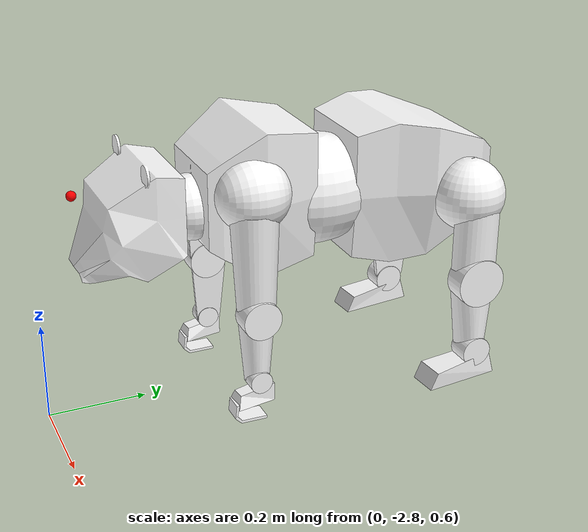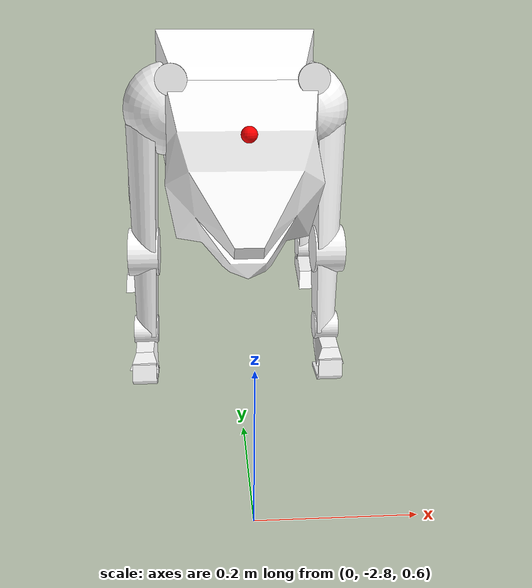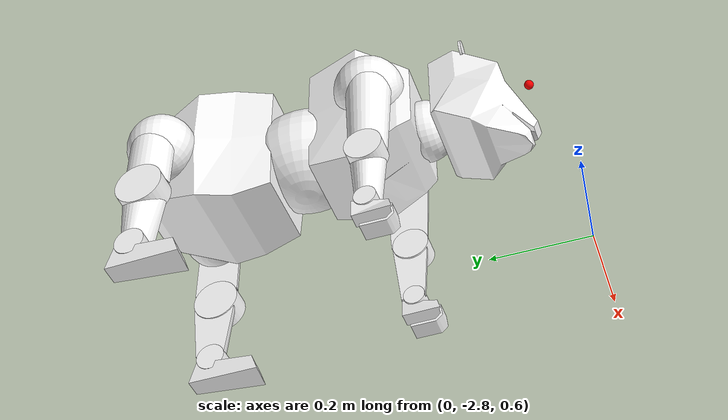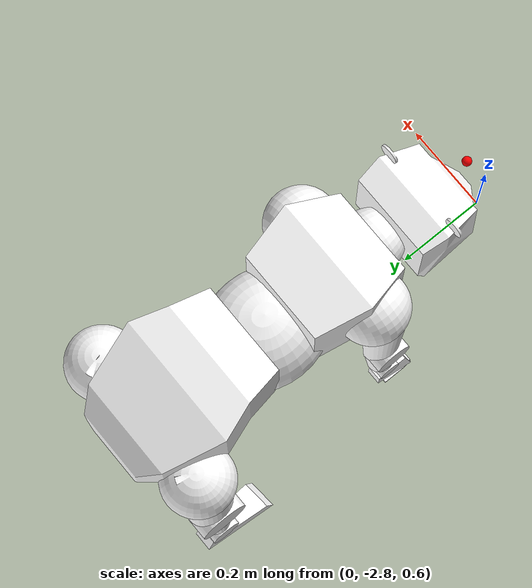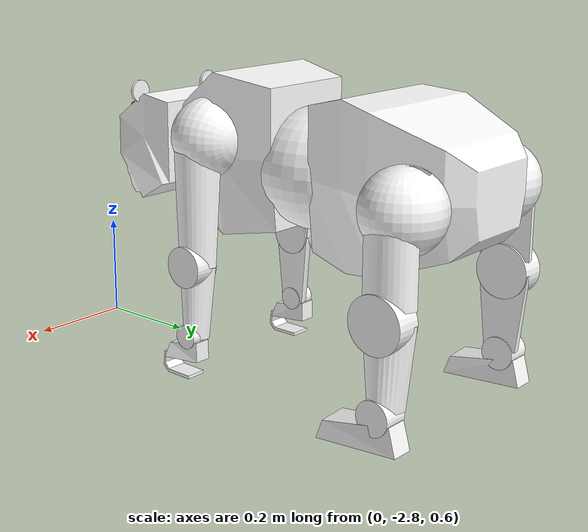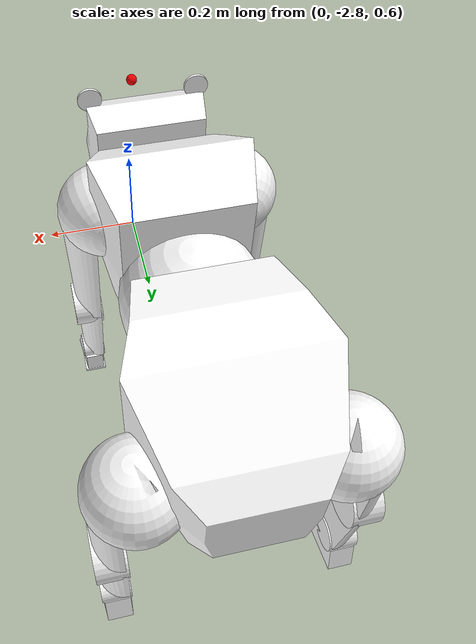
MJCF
<mujoco>
  <compiler angle="radian" autolimits="true"/>
  <worldbody>
    <!-- Parent World [[1.0,0.0,0.0,0.0],[0.0,1.0,0.0,0.0],[0.0,0.0,1.0,0.0],[0.0,0.0,0.0,1.0]]-->
    <!-- Parent local [[1.0,0.0,0.0,0.0],[0.0,1.0,0.0,0.0],[0.0,0.0,1.0,0.0],[0.0,0.0,0.0,1.0]]-->
    <!-- Parent Inverse [[1.0,0.0,0.0,0.0],[0.0,1.0,0.0,0.0],[0.0,0.0,1.0,0.0],[0.0,0.0,0.0,1.0]]-->
    <!-- Child World [[1.0,0.0,0.0,-0.0],[0.0,1.0,0.0,-0.0],[0.0,0.0,1.0,0.4],[0.0,0.0,0.0,1.0]]-->
    <!-- Child Local [[1.0,0.0,0.0,-0.0],[0.0,1.0,0.0,-0.0],[0.0,0.0,1.0,0.4],[0.0,0.0,0.0,1.0]]-->
    <!-- Child Basis [[1.0,0.0,0.0,-0.0],[0.0,1.0,0.0,-0.0],[0.0,0.0,1.0,0.4],[0.0,0.0,0.0,1.0]]-->
    <!-- Relative Matrix [[1.0,0.0,0.0,0.0],[0.0,1.0,0.0,-2.0],[0.0,0.0,1.0,1.0],[0.0,0.0,0.0,1.0]]-->
    <body name="TaiwanBear" pos="0.0 -2.0 1.0" >
    <freejoint/>
      <geom type="mesh" name="TaiwanBear geom" mesh="Body" rgba="1.0 1.0 1.0 1.0"  />
      <!-- Parent World [[1.0,0.0,0.0,-0.0],[0.0,1.0,0.0,-0.0],[0.0,0.0,1.0,0.4],[0.0,0.0,0.0,1.0]]-->
      <!-- Parent local [[1.0,0.0,0.0,-0.0],[0.0,1.0,0.0,-0.0],[0.0,0.0,1.0,0.4],[0.0,0.0,0.0,1.0]]-->
      <!-- Parent Inverse [[1.0,0.0,0.0,0.0],[0.0,1.0,0.0,0.0],[0.0,0.0,1.0,0.0],[0.0,0.0,0.0,1.0]]-->
      <!-- Child World [[-0.0,0.0,1.0,0.14],[0.0,1.0,0.0,0.06],[-1.0,0.0,-0.0,-0.01],[0.0,0.0,0.0,1.0]]-->
      <!-- Child Local [[-0.0,0.0,1.0,0.14],[0.0,1.0,0.0,0.06],[-1.0,0.0,-0.0,-0.41],[0.0,0.0,0.0,1.0]]-->
      <!-- Child Basis [[-0.0,0.0,1.0,0.14],[0.0,1.0,0.0,0.06],[-1.0,0.0,-0.0,-0.01],[0.0,0.0,0.0,1.0]]-->
      <!-- Relative Matrix [[-0.0,0.0,1.0,0.14],[0.0,1.0,0.0,0.06],[-1.0,0.0,-0.0,-0.01],[0.0,0.0,0.0,1.0]]-->
      <body name="RJoint_Back_Upper_XYZ_L" pos="0.14427818357944489 0.058760032057762146 -0.007478982210159302" quat="0.7071067094802856 0.0 0.7071068286895752 0.0" >
      <joint type="hinge" name="RJoint_Back_Upper_XYZ_L_X" pos="0.0 0.0 0.0" axis = "1 0 0" damping="1.084" armature="0.045" frictionloss="0.03"  />
      <joint type="hinge" name="RJoint_Back_Upper_XYZ_L_Y" pos="0.0 0.0 0.0" axis = "0 1 0" damping="1.084" armature="0.045" frictionloss="0.03"  />
      <joint type="hinge" name="RJoint_Back_Upper_XYZ_L_Z" pos="0.0 0.0 0.0" axis = "0 0 1" damping="1.084" armature="0.045" frictionloss="0.03"  />
        <geom type="mesh" name="RJoint_Back_Upper_XYZ_L geom" mesh="Sphere.008" rgba="1.0 1.0 1.0 1.0"  />
        <!-- Parent World [[-0.0,0.0,1.0,0.14],[0.0,1.0,0.0,0.06],[-1.0,0.0,-0.0,0.39],[0.0,0.0,0.0,1.0]]-->
        <!-- Parent local [[-0.0,0.0,1.0,0.14],[0.0,1.0,0.0,0.06],[-1.0,0.0,-0.0,-0.01],[0.0,0.0,0.0,1.0]]-->
        <!-- Parent Inverse [[1.0,0.0,0.0,0.0],[0.0,1.0,0.0,0.0],[0.0,0.0,1.0,0.0],[0.0,0.0,0.0,1.0]]-->
        <!-- Child World [[-0.0,0.0,-1.0,0.07],[0.0,1.0,0.0,0.0],[1.0,0.0,-0.0,0.05],[0.0,0.0,0.0,1.0]]-->
        <!-- Child Local [[-1.0,0.0,0.0,0.34],[0.0,1.0,0.0,-0.06],[-0.0,0.0,-1.0,-0.07],[0.0,0.0,0.0,1.0]]-->
        <!-- Child Basis [[-0.0,0.0,-1.0,0.07],[0.0,1.0,0.0,0.0],[1.0,0.0,-0.0,0.05],[0.0,0.0,0.0,1.0]]-->
        <!-- Relative Matrix [[-0.0,0.0,-1.0,0.07],[0.0,1.0,0.0,0.0],[1.0,0.0,-0.0,0.05],[0.0,0.0,0.0,1.0]]-->
        <body name="Link_Back_Upper_L" pos="0.07168442010879517 0.0024633705615997314 0.054209932684898376" quat="0.7071067094802856 -0.0 -0.7071068286895752 -0.0" >
          <geom type="mesh" name="Link_Back_Upper_L geom" mesh="Cylinder.029" rgba="1.0 1.0 1.0 1.0"  />
          <!-- Parent World [[1.0,0.0,0.0,0.2],[0.0,1.0,0.0,0.06],[0.0,0.0,1.0,0.32],[0.0,0.0,0.0,1.0]]-->
          <!-- Parent local [[-0.0,0.0,-1.0,0.07],[0.0,1.0,0.0,0.0],[1.0,0.0,-0.0,0.05],[0.0,0.0,0.0,1.0]]-->
          <!-- Parent Inverse [[1.0,0.0,0.0,0.0],[0.0,1.0,0.0,0.0],[0.0,0.0,1.0,0.0],[0.0,0.0,0.0,1.0]]-->
          <!-- Child World [[-0.0,0.0,1.0,-0.01],[0.0,1.0,0.0,-0.0],[-1.0,0.0,-0.0,-0.1],[0.0,0.0,0.0,1.0]]-->
          <!-- Child Local [[-0.0,0.0,1.0,-0.2],[0.0,1.0,0.0,-0.06],[-1.0,0.0,-0.0,-0.42],[0.0,0.0,0.0,1.0]]-->
          <!-- Child Basis [[-0.0,0.0,1.0,-0.01],[0.0,1.0,0.0,-0.0],[-1.0,0.0,-0.0,-0.1],[0.0,0.0,0.0,1.0]]-->
          <!-- Relative Matrix [[-0.0,0.0,1.0,-0.01],[0.0,1.0,0.0,-0.0],[-1.0,0.0,-0.0,-0.1],[0.0,0.0,0.0,1.0]]-->
          <body name="RJoint_Back_Lower_Z_L" pos="-0.005224734544754028 -0.002412572503089905 -0.10004378855228424" quat="0.7071067094802856 0.0 0.7071068286895752 0.0" >
          <joint type="hinge" name="RJoint_Back_Lower_Z_L_Z" pos="0.0 0.0 0.0" axis="-1.4901161193847656e-07 0.0 -0.9999999403953552"  />
            <geom type="mesh" name="RJoint_Back_Lower_Z_L geom" mesh="Cylinder.028" rgba="1.0 1.0 1.0 1.0"  />
            <!-- Parent World [[-0.0,0.0,1.0,0.19],[0.0,1.0,0.0,0.06],[-1.0,0.0,-0.0,0.22],[0.0,0.0,0.0,1.0]]-->
            <!-- Parent local [[-0.0,0.0,1.0,-0.01],[0.0,1.0,0.0,-0.0],[-1.0,0.0,-0.0,-0.1],[0.0,0.0,0.0,1.0]]-->
            <!-- Parent Inverse [[1.0,0.0,0.0,0.0],[0.0,1.0,0.0,0.0],[0.0,0.0,1.0,0.0],[0.0,0.0,0.0,1.0]]-->
            <!-- Child World [[-0.0,0.0,-1.0,0.08],[0.0,1.0,0.0,0.0],[1.0,0.0,-0.0,0.0],[0.0,0.0,0.0,1.0]]-->
            <!-- Child Local [[-1.0,0.0,0.0,0.22],[0.0,1.0,0.0,-0.06],[-0.0,0.0,-1.0,-0.12],[0.0,0.0,0.0,1.0]]-->
            <!-- Child Basis [[-0.0,0.0,-1.0,0.08],[0.0,1.0,0.0,0.0],[1.0,0.0,-0.0,0.0],[0.0,0.0,0.0,1.0]]-->
            <!-- Relative Matrix [[-0.0,0.0,-1.0,0.08],[0.0,1.0,0.0,0.0],[1.0,0.0,-0.0,0.0],[0.0,0.0,0.0,1.0]]-->
            <body name="Link_Back_Lower_L" pos="0.07540285587310791 0.0024126097559928894 0.004566282033920288" quat="0.7071067094802856 -0.0 -0.7071068286895752 -0.0" >
              <geom type="mesh" name="Link_Back_Lower_L geom" mesh="Cylinder.027" rgba="1.0 1.0 1.0 1.0"  />
              <!-- Parent World [[1.0,0.0,0.0,0.2],[0.0,1.0,0.0,0.06],[-0.0,0.0,1.0,0.15],[0.0,0.0,0.0,1.0]]-->
              <!-- Parent local [[-0.0,0.0,-1.0,0.08],[0.0,1.0,0.0,0.0],[1.0,0.0,-0.0,0.0],[0.0,0.0,0.0,1.0]]-->
              <!-- Parent Inverse [[1.0,0.0,0.0,-0.0],[0.0,1.0,0.0,0.0],[0.0,0.0,1.0,0.0],[0.0,0.0,0.0,1.0]]-->
              <!-- Child World [[-0.0,0.0,1.0,-0.0],[0.0,1.0,0.0,-0.0],[-1.0,0.0,-0.0,-0.08],[0.0,0.0,0.0,1.0]]-->
              <!-- Child Local [[-0.0,0.0,1.0,-0.2],[0.0,1.0,0.0,-0.06],[-1.0,0.0,-0.0,-0.23],[0.0,0.0,0.0,1.0]]-->
              <!-- Child Basis [[-0.0,0.0,1.0,-0.0],[0.0,1.0,0.0,-0.0],[-1.0,0.0,-0.0,-0.08],[0.0,0.0,0.0,1.0]]-->
              <!-- Relative Matrix [[-0.0,0.0,1.0,-0.0],[0.0,1.0,0.0,-0.0],[-1.0,0.0,-0.0,-0.08],[0.0,0.0,0.0,1.0]]-->
              <body name="RJoint_Back_Ankle_Z_L" pos="-0.004567772150039673 -0.0024125464260578156 -0.08303964138031006" quat="0.7071067094802856 0.0 0.7071068286895752 0.0" >
              <joint type="hinge" name="RJoint_Back_Ankle_Z_L_Z" pos="0.0 0.0 0.0" axis="-1.4901161193847656e-07 0.0 -0.9999999403953552"  />
                <geom type="mesh" name="RJoint_Back_Ankle_Z_L geom" mesh="Cylinder.026" rgba="1.0 1.0 1.0 1.0"  />
                <!-- Parent World [[-0.0,0.0,1.0,0.19],[0.0,1.0,0.0,0.06],[-1.0,0.0,-0.0,0.06],[0.0,0.0,0.0,1.0]]-->
                <!-- Parent local [[-0.0,0.0,1.0,-0.0],[0.0,1.0,0.0,-0.0],[-1.0,0.0,-0.0,-0.08],[0.0,0.0,0.0,1.0]]-->
                <!-- Parent Inverse [[1.0,0.0,0.0,-0.0],[0.0,1.0,0.0,0.0],[0.0,0.0,1.0,-0.0],[0.0,0.0,0.0,1.0]]-->
                <!-- Child World [[-0.0,0.0,-1.0,0.04],[0.0,1.0,0.0,-0.03],[1.0,0.0,-0.0,-0.0],[0.0,0.0,0.0,1.0]]-->
                <!-- Child Local [[-1.0,0.0,0.0,0.06],[0.0,1.0,0.0,-0.09],[-0.0,0.0,-1.0,-0.15],[0.0,0.0,0.0,1.0]]-->
                <!-- Child Basis [[-0.0,0.0,-1.0,0.04],[0.0,1.0,0.0,-0.03],[1.0,0.0,-0.0,-0.0],[0.0,0.0,0.0,1.0]]-->
                <!-- Relative Matrix [[-0.0,0.0,-1.0,0.04],[0.0,1.0,0.0,-0.03],[1.0,0.0,-0.0,-0.0],[0.0,0.0,0.0,1.0]]-->
                <body name="Link_Back_Foot_L" pos="0.03862288221716881 -0.032784026116132736 -9.390711784362793e-05" quat="0.7071067094802856 -0.0 -0.7071068286895752 -0.0" >
                  <geom type="mesh" name="Link_Back_Foot_L geom" mesh="Cylinder.025" rgba="1.0 1.0 1.0 1.0"  />
                </body>
              </body>
            </body>
          </body>
        </body>
      </body>
      <!-- Parent World [[1.0,0.0,0.0,-0.0],[0.0,1.0,0.0,-0.0],[0.0,0.0,1.0,0.4],[0.0,0.0,0.0,1.0]]-->
      <!-- Parent local [[1.0,0.0,0.0,-0.0],[0.0,1.0,0.0,-0.0],[0.0,0.0,1.0,0.4],[0.0,0.0,0.0,1.0]]-->
      <!-- Parent Inverse [[1.0,0.0,0.0,0.0],[0.0,1.0,0.0,0.0],[0.0,0.0,1.0,0.0],[0.0,0.0,0.0,1.0]]-->
      <!-- Child World [[-0.0,0.0,-1.0,-0.14],[0.0,1.0,0.0,0.06],[1.0,0.0,-0.0,0.39],[0.0,0.0,0.0,1.0]]-->
      <!-- Child Local [[-0.0,0.0,-1.0,-0.14],[0.0,1.0,0.0,0.06],[1.0,0.0,-0.0,-0.01],[0.0,0.0,0.0,1.0]]-->
      <!-- Child Basis [[-0.0,0.0,-1.0,-0.14],[0.0,1.0,0.0,0.06],[1.0,0.0,-0.0,-0.01],[0.0,0.0,0.0,1.0]]-->
      <!-- Relative Matrix [[-0.0,0.0,-1.0,-0.14],[0.0,1.0,0.0,0.06],[1.0,0.0,-0.0,-0.01],[0.0,0.0,0.0,1.0]]-->
      <body name="RJoint_Back_Upper_XYZ_R" pos="-0.14427809417247772 0.05876001715660095 -0.007478952407836914" quat="0.7071067094802856 -0.0 -0.7071068286895752 -0.0" >
      <joint type="hinge" name="RJoint_Back_Upper_XYZ_R_X" pos="0.0 0.0 0.0" axis = "1 0 0" damping="1.084" armature="0.045" frictionloss="0.03"  />
      <joint type="hinge" name="RJoint_Back_Upper_XYZ_R_Y" pos="0.0 0.0 0.0" axis = "0 1 0" damping="1.084" armature="0.045" frictionloss="0.03"  />
      <joint type="hinge" name="RJoint_Back_Upper_XYZ_R_Z" pos="0.0 0.0 0.0" axis = "0 0 1" damping="1.084" armature="0.045" frictionloss="0.03"  />
        <geom type="mesh" name="RJoint_Back_Upper_XYZ_R geom" mesh="Sphere.001" rgba="1.0 1.0 1.0 1.0"  />
        <!-- Parent World [[-0.0,0.0,-1.0,-0.14],[0.0,1.0,0.0,0.06],[1.0,0.0,-0.0,0.39],[0.0,0.0,0.0,1.0]]-->
        <!-- Parent local [[-0.0,0.0,-1.0,-0.14],[0.0,1.0,0.0,0.06],[1.0,0.0,-0.0,-0.01],[0.0,0.0,0.0,1.0]]-->
        <!-- Parent Inverse [[1.0,0.0,0.0,-0.0],[0.0,1.0,0.0,0.0],[0.0,0.0,1.0,0.0],[0.0,0.0,0.0,1.0]]-->
        <!-- Child World [[-0.0,0.0,1.0,-0.07],[0.0,1.0,0.0,0.0],[-1.0,0.0,-0.0,0.05],[0.0,0.0,0.0,1.0]]-->
        <!-- Child Local [[-1.0,0.0,-0.0,-0.34],[0.0,1.0,0.0,-0.06],[0.0,0.0,-1.0,-0.07],[0.0,0.0,0.0,1.0]]-->
        <!-- Child Basis [[-0.0,0.0,1.0,-0.07],[0.0,1.0,0.0,0.0],[-1.0,0.0,-0.0,0.05],[0.0,0.0,0.0,1.0]]-->
        <!-- Relative Matrix [[-0.0,0.0,1.0,-0.07],[0.0,1.0,0.0,0.0],[-1.0,0.0,-0.0,0.05],[0.0,0.0,0.0,1.0]]-->
        <body name="Link_Back_Upper_R" pos="-0.07168391346931458 0.002463463693857193 0.054211124777793884" quat="0.7071067094802856 0.0 0.7071068286895752 0.0" >
          <geom type="mesh" name="Link_Back_Upper_R geom" mesh="Cylinder.007" rgba="1.0 1.0 1.0 1.0"  />
          <!-- Parent World [[1.0,0.0,0.0,-0.2],[0.0,1.0,0.0,0.06],[0.0,0.0,1.0,0.32],[0.0,0.0,0.0,1.0]]-->
          <!-- Parent local [[-0.0,0.0,1.0,-0.07],[0.0,1.0,0.0,0.0],[-1.0,0.0,-0.0,0.05],[0.0,0.0,0.0,1.0]]-->
          <!-- Parent Inverse [[1.0,0.0,0.0,0.0],[0.0,1.0,0.0,0.0],[0.0,0.0,1.0,0.0],[0.0,0.0,0.0,1.0]]-->
          <!-- Child World [[-0.0,0.0,-1.0,0.01],[0.0,1.0,0.0,-0.0],[1.0,0.0,-0.0,-0.1],[0.0,0.0,0.0,1.0]]-->
          <!-- Child Local [[-0.0,0.0,-1.0,0.2],[0.0,1.0,0.0,-0.06],[1.0,0.0,-0.0,-0.42],[0.0,0.0,0.0,1.0]]-->
          <!-- Child Basis [[-0.0,0.0,-1.0,0.01],[0.0,1.0,0.0,-0.0],[1.0,0.0,-0.0,-0.1],[0.0,0.0,0.0,1.0]]-->
          <!-- Relative Matrix [[-0.0,0.0,-1.0,0.01],[0.0,1.0,0.0,-0.0],[1.0,0.0,-0.0,-0.1],[0.0,0.0,0.0,1.0]]-->
          <body name="RJoint_Back_Lower_Z_R" pos="0.005224123597145081 -0.002412468194961548 -0.10004405677318573" quat="0.7071067094802856 -0.0 -0.7071068286895752 -0.0" >
          <joint type="hinge" name="RJoint_Back_Lower_Z_R_Z" pos="0.0 0.0 0.0" axis="-1.4901161193847656e-07 0.0 0.9999999403953552"  />
            <geom type="mesh" name="RJoint_Back_Lower_Z_R geom" mesh="Cylinder.006" rgba="1.0 1.0 1.0 1.0"  />
            <!-- Parent World [[-0.0,0.0,-1.0,-0.19],[0.0,1.0,0.0,0.06],[1.0,0.0,-0.0,0.22],[0.0,0.0,0.0,1.0]]-->
            <!-- Parent local [[-0.0,0.0,-1.0,0.01],[0.0,1.0,0.0,-0.0],[1.0,0.0,-0.0,-0.1],[0.0,0.0,0.0,1.0]]-->
            <!-- Parent Inverse [[1.0,0.0,0.0,-0.0],[0.0,1.0,0.0,0.0],[0.0,0.0,1.0,0.0],[0.0,0.0,0.0,1.0]]-->
            <!-- Child World [[-0.0,0.0,1.0,-0.08],[0.0,1.0,0.0,0.0],[-1.0,0.0,-0.0,0.0],[0.0,0.0,0.0,1.0]]-->
            <!-- Child Local [[-1.0,0.0,-0.0,-0.22],[0.0,1.0,0.0,-0.06],[0.0,0.0,-1.0,-0.12],[0.0,0.0,0.0,1.0]]-->
            <!-- Child Basis [[-0.0,0.0,1.0,-0.08],[0.0,1.0,0.0,0.0],[-1.0,0.0,-0.0,0.0],[0.0,0.0,0.0,1.0]]-->
            <!-- Relative Matrix [[-0.0,0.0,1.0,-0.08],[0.0,1.0,0.0,0.0],[-1.0,0.0,-0.0,0.0],[0.0,0.0,0.0,1.0]]-->
            <body name="Link_Back_Lower_R" pos="-0.07540372014045715 0.002412736415863037 0.004567325115203857" quat="0.7071067094802856 0.0 0.7071068286895752 0.0" >
              <geom type="mesh" name="Link_Back_Lower_R geom" mesh="Cylinder.005" rgba="1.0 1.0 1.0 1.0"  />
              <!-- Parent World [[1.0,0.0,-0.0,-0.2],[0.0,1.0,0.0,0.06],[0.0,0.0,1.0,0.15],[0.0,0.0,0.0,1.0]]-->
              <!-- Parent local [[-0.0,0.0,1.0,-0.08],[0.0,1.0,0.0,0.0],[-1.0,0.0,-0.0,0.0],[0.0,0.0,0.0,1.0]]-->
              <!-- Parent Inverse [[1.0,0.0,0.0,0.0],[0.0,1.0,0.0,0.0],[0.0,0.0,1.0,0.0],[0.0,0.0,0.0,1.0]]-->
              <!-- Child World [[-0.0,0.0,-1.0,0.0],[0.0,1.0,0.0,-0.0],[1.0,0.0,-0.0,-0.08],[0.0,0.0,0.0,1.0]]-->
              <!-- Child Local [[-0.0,0.0,-1.0,0.2],[0.0,1.0,0.0,-0.06],[1.0,0.0,-0.0,-0.23],[0.0,0.0,0.0,1.0]]-->
              <!-- Child Basis [[-0.0,0.0,-1.0,0.0],[0.0,1.0,0.0,-0.0],[1.0,0.0,-0.0,-0.08],[0.0,0.0,0.0,1.0]]-->
              <!-- Relative Matrix [[-0.0,0.0,-1.0,0.0],[0.0,1.0,0.0,-0.0],[1.0,0.0,-0.0,-0.08],[0.0,0.0,0.0,1.0]]-->
              <body name="RJoint_Back_Ankle_Z_R" pos="0.004567652940750122 -0.002412468194961548 -0.08304057270288467" quat="0.7071067094802856 -0.0 -0.7071068286895752 -0.0" >
              <joint type="hinge" name="RJoint_Back_Ankle_Z_R_Z" pos="0.0 0.0 0.0" axis="-1.4901161193847656e-07 0.0 0.9999999403953552"  />
                <geom type="mesh" name="RJoint_Back_Ankle_Z_R geom" mesh="Cylinder.003" rgba="1.0 1.0 1.0 1.0"  />
                <!-- Parent World [[-0.0,0.0,-1.0,-0.19],[0.0,1.0,0.0,0.06],[1.0,0.0,-0.0,0.06],[0.0,0.0,0.0,1.0]]-->
                <!-- Parent local [[-0.0,0.0,-1.0,0.0],[0.0,1.0,0.0,-0.0],[1.0,0.0,-0.0,-0.08],[0.0,0.0,0.0,1.0]]-->
                <!-- Parent Inverse [[1.0,0.0,0.0,0.0],[0.0,1.0,0.0,0.0],[0.0,0.0,1.0,-0.0],[0.0,0.0,0.0,1.0]]-->
                <!-- Child World [[-0.0,0.0,1.0,-0.04],[0.0,1.0,0.0,-0.03],[-1.0,0.0,-0.0,-0.0],[0.0,0.0,0.0,1.0]]-->
                <!-- Child Local [[-1.0,0.0,-0.0,-0.06],[0.0,1.0,0.0,-0.09],[0.0,0.0,-1.0,-0.15],[0.0,0.0,0.0,1.0]]-->
                <!-- Child Basis [[-0.0,0.0,1.0,-0.04],[0.0,1.0,0.0,-0.03],[-1.0,0.0,-0.0,-0.0],[0.0,0.0,0.0,1.0]]-->
                <!-- Relative Matrix [[-0.0,0.0,1.0,-0.04],[0.0,1.0,0.0,-0.03],[-1.0,0.0,-0.0,-0.0],[0.0,0.0,0.0,1.0]]-->
                <body name="Link_Back_Foot_R" pos="-0.03862367197871208 -0.03278389945626259 -9.386241436004639e-05" quat="0.7071067094802856 0.0 0.7071068286895752 0.0" >
                  <geom type="mesh" name="Link_Back_Foot_R geom" mesh="Cylinder.002" rgba="1.0 1.0 1.0 1.0"  />
                </body>
              </body>
            </body>
          </body>
        </body>
      </body>
      <!-- Parent World [[1.0,0.0,0.0,-0.0],[0.0,1.0,0.0,-0.0],[0.0,0.0,1.0,0.4],[0.0,0.0,0.0,1.0]]-->
      <!-- Parent local [[1.0,0.0,0.0,-0.0],[0.0,1.0,0.0,-0.0],[0.0,0.0,1.0,0.4],[0.0,0.0,0.0,1.0]]-->
      <!-- Parent Inverse [[1.0,0.0,0.0,0.0],[0.0,1.0,0.0,0.0],[0.0,0.0,1.0,0.0],[0.0,0.0,0.0,1.0]]-->
      <!-- Child World [[1.0,0.0,0.0,0.0],[0.0,1.0,0.0,-0.22],[0.0,0.0,1.0,0.4],[0.0,0.0,0.0,1.0]]-->
      <!-- Child Local [[1.0,0.0,0.0,0.0],[0.0,1.0,0.0,-0.22],[0.0,0.0,1.0,0.0],[0.0,0.0,0.0,1.0]]-->
      <!-- Child Basis [[1.0,0.0,0.0,0.0],[0.0,1.0,0.0,-0.22],[0.0,0.0,1.0,0.0],[0.0,0.0,0.0,1.0]]-->
      <!-- Relative Matrix [[1.0,0.0,0.0,0.0],[0.0,1.0,0.0,-0.22],[0.0,0.0,1.0,0.0],[0.0,0.0,0.0,1.0]]-->
      <body name="RJoint_Torso_C_XYZ_C" pos="1.1123316490113666e-08 -0.22252711653709412 1.4901161193847656e-07" quat="1.0 0.0 0.0 0.0" >
      <joint type="hinge" name="RJoint_Torso_C_XYZ_C_X" pos="0.0 0.0 0.0" axis = "1 0 0" damping="1.084" armature="0.045" frictionloss="0.03"  />
      <joint type="hinge" name="RJoint_Torso_C_XYZ_C_Y" pos="0.0 0.0 0.0" axis = "0 1 0" damping="1.084" armature="0.045" frictionloss="0.03"  />
      <joint type="hinge" name="RJoint_Torso_C_XYZ_C_Z" pos="0.0 0.0 0.0" axis = "0 0 1" damping="1.084" armature="0.045" frictionloss="0.03"  />
        <geom type="mesh" name="RJoint_Torso_C_XYZ_C geom" mesh="Sphere.009" rgba="1.0 1.0 1.0 1.0"  />
        <!-- Parent World [[1.0,0.0,0.0,0.0],[0.0,1.0,0.0,-0.22],[0.0,0.0,1.0,0.4],[0.0,0.0,0.0,1.0]]-->
        <!-- Parent local [[1.0,0.0,0.0,0.0],[0.0,1.0,0.0,-0.22],[0.0,0.0,1.0,0.0],[0.0,0.0,0.0,1.0]]-->
        <!-- Parent Inverse [[1.0,0.0,0.0,0.0],[0.0,1.0,0.0,0.0],[0.0,0.0,1.0,0.0],[0.0,0.0,0.0,1.0]]-->
        <!-- Child World [[1.0,0.0,0.0,0.0],[0.0,1.0,0.0,-0.18],[0.0,0.0,1.0,0.0],[0.0,0.0,0.0,1.0]]-->
        <!-- Child Local [[1.0,0.0,0.0,0.0],[0.0,1.0,0.0,0.04],[0.0,0.0,1.0,-0.4],[0.0,0.0,0.0,1.0]]-->
        <!-- Child Basis [[1.0,0.0,0.0,0.0],[0.0,1.0,0.0,-0.18],[0.0,0.0,1.0,0.0],[0.0,0.0,0.0,1.0]]-->
        <!-- Relative Matrix [[1.0,0.0,0.0,0.0],[0.0,1.0,0.0,-0.18],[0.0,0.0,1.0,0.0],[0.0,0.0,0.0,1.0]]-->
        <body name="Link_UpperBody_C" pos="5.992328766524224e-08 -0.18047350645065308 0.0019748806953430176" quat="1.0 0.0 0.0 0.0" >
          <geom type="mesh" name="Link_UpperBody_C geom" mesh="Body.002" rgba="1.0 1.0 1.0 1.0"  />
          <!-- Parent World [[1.0,0.0,0.0,0.0],[0.0,1.0,0.0,-0.4],[0.0,0.0,1.0,0.4],[0.0,0.0,0.0,1.0]]-->
          <!-- Parent local [[1.0,0.0,0.0,0.0],[0.0,1.0,0.0,-0.18],[0.0,0.0,1.0,0.0],[0.0,0.0,0.0,1.0]]-->
          <!-- Parent Inverse [[1.0,0.0,0.0,0.0],[0.0,1.0,0.0,0.0],[0.0,0.0,1.0,0.0],[0.0,0.0,0.0,1.0]]-->
          <!-- Child World [[-0.0,0.0,1.0,0.1],[0.0,1.0,0.0,0.01],[-1.0,0.0,-0.0,0.05],[0.0,0.0,0.0,1.0]]-->
          <!-- Child Local [[-0.0,0.0,1.0,0.1],[0.0,1.0,0.0,0.41],[-1.0,0.0,-0.0,-0.36],[0.0,0.0,0.0,1.0]]-->
          <!-- Child Basis [[-0.0,0.0,1.0,0.1],[0.0,1.0,0.0,0.01],[-1.0,0.0,-0.0,0.05],[0.0,0.0,0.0,1.0]]-->
          <!-- Relative Matrix [[-0.0,0.0,1.0,0.1],[0.0,1.0,0.0,0.01],[-1.0,0.0,-0.0,0.05],[0.0,0.0,0.0,1.0]]-->
          <body name="RJoint_Front_Upper_XYZ_L" pos="0.1049974113702774 0.005444914102554321 0.04802507162094116" quat="0.7071067094802856 0.0 0.7071068286895752 0.0" >
          <joint type="hinge" name="RJoint_Front_Upper_XYZ_L_X" pos="0.0 0.0 0.0" axis = "1 0 0" damping="1.084" armature="0.045" frictionloss="0.03"  />
          <joint type="hinge" name="RJoint_Front_Upper_XYZ_L_Y" pos="0.0 0.0 0.0" axis = "0 1 0" damping="1.084" armature="0.045" frictionloss="0.03"  />
          <joint type="hinge" name="RJoint_Front_Upper_XYZ_L_Z" pos="0.0 0.0 0.0" axis = "0 0 1" damping="1.084" armature="0.045" frictionloss="0.03"  />
            <geom type="mesh" name="RJoint_Front_Upper_XYZ_L geom" mesh="Sphere.004" rgba="1.0 1.0 1.0 1.0"  />
            <!-- Parent World [[-0.0,0.0,1.0,0.1],[0.0,1.0,0.0,-0.4],[-1.0,0.0,-0.0,0.45],[0.0,0.0,0.0,1.0]]-->
            <!-- Parent local [[-0.0,0.0,1.0,0.1],[0.0,1.0,0.0,0.01],[-1.0,0.0,-0.0,0.05],[0.0,0.0,0.0,1.0]]-->
            <!-- Parent Inverse [[1.0,0.0,0.0,-0.0],[0.0,1.0,0.0,-0.0],[0.0,0.0,1.0,0.0],[0.0,0.0,0.0,1.0]]-->
            <!-- Child World [[-0.0,0.0,-1.0,0.13],[0.0,1.0,0.0,-0.01],[1.0,0.0,-0.0,0.05],[0.0,0.0,0.0,1.0]]-->
            <!-- Child Local [[-1.0,0.0,0.0,0.4],[0.0,1.0,0.0,0.39],[-0.0,0.0,-1.0,0.02],[0.0,0.0,0.0,1.0]]-->
            <!-- Child Basis [[-0.0,0.0,-1.0,0.13],[0.0,1.0,0.0,-0.01],[1.0,0.0,-0.0,0.05],[0.0,0.0,0.0,1.0]]-->
            <!-- Relative Matrix [[-0.0,0.0,-1.0,0.13],[0.0,1.0,0.0,-0.01],[1.0,0.0,-0.0,0.05],[0.0,0.0,0.0,1.0]]-->
            <body name="Link_Front_Upper_L" pos="0.12990225851535797 -0.006966948509216309 0.051130957901477814" quat="0.7071067094802856 -0.0 -0.7071068286895752 -0.0" >
              <geom type="mesh" name="Link_Front_Upper_L geom" mesh="Cylinder.009" rgba="1.0 1.0 1.0 1.0"  />
              <!-- Parent World [[1.0,0.0,0.0,0.16],[0.0,1.0,0.0,-0.4],[0.0,0.0,1.0,0.32],[0.0,0.0,0.0,1.0]]-->
              <!-- Parent local [[-0.0,0.0,-1.0,0.13],[0.0,1.0,0.0,-0.01],[1.0,0.0,-0.0,0.05],[0.0,0.0,0.0,1.0]]-->
              <!-- Parent Inverse [[1.0,0.0,0.0,0.0],[0.0,1.0,0.0,0.0],[0.0,0.0,1.0,-0.0],[0.0,0.0,0.0,1.0]]-->
              <!-- Child World [[-0.0,0.0,1.0,-0.0],[0.0,1.0,0.0,-0.0],[-1.0,0.0,-0.0,-0.11],[0.0,0.0,0.0,1.0]]-->
              <!-- Child Local [[-0.0,0.0,1.0,-0.16],[0.0,1.0,0.0,0.4],[-1.0,0.0,-0.0,-0.43],[0.0,0.0,0.0,1.0]]-->
              <!-- Child Basis [[-0.0,0.0,1.0,-0.0],[0.0,1.0,0.0,-0.0],[-1.0,0.0,-0.0,-0.11],[0.0,0.0,0.0,1.0]]-->
              <!-- Relative Matrix [[-0.0,0.0,1.0,-0.0],[0.0,1.0,0.0,-0.0],[-1.0,0.0,-0.0,-0.11],[0.0,0.0,0.0,1.0]]-->
              <body name="RJoint_Front_Lower_Z_L" pos="-0.0030747056007385254 -0.0023990273475646973 -0.10690094530582428" quat="0.7071067094802856 0.0 0.7071068286895752 0.0" >
              <joint type="hinge" name="RJoint_Front_Lower_Z_L_Z" pos="0.0 0.0 0.0" axis="-1.4901161193847656e-07 0.0 -0.9999999403953552"  />
                <geom type="mesh" name="RJoint_Front_Lower_Z_L geom" mesh="Cylinder.021" rgba="1.0 1.0 1.0 1.0"  />
                <!-- Parent World [[-0.0,0.0,1.0,0.15],[0.0,1.0,0.0,-0.41],[-1.0,0.0,-0.0,0.21],[0.0,0.0,0.0,1.0]]-->
                <!-- Parent local [[-0.0,0.0,1.0,-0.0],[0.0,1.0,0.0,-0.0],[-1.0,0.0,-0.0,-0.11],[0.0,0.0,0.0,1.0]]-->
                <!-- Parent Inverse [[1.0,0.0,0.0,0.0],[0.0,1.0,0.0,0.0],[0.0,0.0,1.0,0.0],[0.0,0.0,0.0,1.0]]-->
                <!-- Child World [[-0.0,0.0,-1.0,0.07],[0.0,1.0,0.0,0.0],[1.0,0.0,-0.0,0.0],[0.0,0.0,0.0,1.0]]-->
                <!-- Child Local [[-1.0,0.0,0.0,0.21],[0.0,1.0,0.0,0.41],[-0.0,0.0,-1.0,-0.08],[0.0,0.0,0.0,1.0]]-->
                <!-- Child Basis [[-0.0,0.0,-1.0,0.07],[0.0,1.0,0.0,0.0],[1.0,0.0,-0.0,0.0],[0.0,0.0,0.0,1.0]]-->
                <!-- Relative Matrix [[-0.0,0.0,-1.0,0.07],[0.0,1.0,0.0,0.0],[1.0,0.0,-0.0,0.0],[0.0,0.0,0.0,1.0]]-->
                <body name="Link_Front_Lower_L" pos="0.07289693504571915 0.0008002221584320068 0.002983391284942627" quat="0.7071067094802856 -0.0 -0.7071068286895752 -0.0" >
                  <geom type="mesh" name="Link_Front_Lower_L geom" mesh="Cylinder.022" rgba="1.0 1.0 1.0 1.0"  />
                  <!-- Parent World [[1.0,0.0,0.0,0.16],[0.0,1.0,0.0,-0.41],[-0.0,0.0,1.0,0.14],[0.0,0.0,0.0,1.0]]-->
                  <!-- Parent local [[-0.0,0.0,-1.0,0.07],[0.0,1.0,0.0,0.0],[1.0,0.0,-0.0,0.0],[0.0,0.0,0.0,1.0]]-->
                  <!-- Parent Inverse [[1.0,0.0,0.0,0.0],[0.0,1.0,0.0,-0.0],[0.0,0.0,1.0,-0.0],[0.0,0.0,0.0,1.0]]-->
                  <!-- Child World [[-0.0,0.0,1.0,-0.0],[0.0,1.0,0.0,-0.0],[-1.0,0.0,-0.0,-0.07],[0.0,0.0,0.0,1.0]]-->
                  <!-- Child Local [[-0.0,0.0,1.0,-0.16],[0.0,1.0,0.0,0.4],[-1.0,0.0,-0.0,-0.21],[0.0,0.0,0.0,1.0]]-->
                  <!-- Child Basis [[-0.0,0.0,1.0,-0.0],[0.0,1.0,0.0,-0.0],[-1.0,0.0,-0.0,-0.07],[0.0,0.0,0.0,1.0]]-->
                  <!-- Relative Matrix [[-0.0,0.0,1.0,-0.0],[0.0,1.0,0.0,-0.0],[-1.0,0.0,-0.0,-0.07],[0.0,0.0,0.0,1.0]]-->
                  <body name="RJoint_Front_Ankle_Z_L" pos="-0.00298386812210083 -0.003095000982284546 -0.06512180715799332" quat="0.7071067094802856 0.0 0.7071068286895752 0.0" >
                  <joint type="hinge" name="RJoint_Front_Ankle_Z_L_Z" pos="0.0 0.0 0.0" axis="-1.4901161193847656e-07 0.0 -0.9999999403953552"  />
                    <geom type="mesh" name="RJoint_Front_Ankle_Z_L geom" mesh="Cylinder.023" rgba="1.0 1.0 1.0 1.0"  />
                    <!-- Parent World [[-0.0,0.0,1.0,0.15],[0.0,1.0,0.0,-0.41],[-1.0,0.0,-0.0,0.08],[0.0,0.0,0.0,1.0]]-->
                    <!-- Parent local [[-0.0,0.0,1.0,-0.0],[0.0,1.0,0.0,-0.0],[-1.0,0.0,-0.0,-0.07],[0.0,0.0,0.0,1.0]]-->
                    <!-- Parent Inverse [[1.0,0.0,0.0,0.0],[0.0,1.0,0.0,0.0],[0.0,0.0,1.0,0.0],[0.0,0.0,0.0,1.0]]-->
                    <!-- Child World [[-0.0,0.0,-1.0,0.03],[0.0,1.0,0.0,-0.01],[1.0,0.0,-0.0,0.0],[0.0,0.0,0.0,1.0]]-->
                    <!-- Child Local [[-1.0,0.0,0.0,0.08],[0.0,1.0,0.0,0.4],[-0.0,0.0,-1.0,-0.12],[0.0,0.0,0.0,1.0]]-->
                    <!-- Child Basis [[-0.0,0.0,-1.0,0.03],[0.0,1.0,0.0,-0.01],[1.0,0.0,-0.0,0.0],[0.0,0.0,0.0,1.0]]-->
                    <!-- Relative Matrix [[-0.0,0.0,-1.0,0.03],[0.0,1.0,0.0,-0.01],[1.0,0.0,-0.0,0.0],[0.0,0.0,0.0,1.0]]-->
                    <body name="Link_Front_Foot_L" pos="0.030603399500250816 -0.010764479637145996 0.0017714649438858032" quat="0.7071067094802856 -0.0 -0.7071068286895752 -0.0" >
                      <geom type="mesh" name="Link_Front_Foot_L geom" mesh="Cylinder.024" rgba="1.0 1.0 1.0 1.0"  />
                      <!-- Parent World [[1.0,0.0,0.0,0.15],[0.0,1.0,0.0,-0.42],[-0.0,0.0,1.0,0.05],[0.0,0.0,0.0,1.0]]-->
                      <!-- Parent local [[-0.0,0.0,-1.0,0.03],[0.0,1.0,0.0,-0.01],[1.0,0.0,-0.0,0.0],[0.0,0.0,0.0,1.0]]-->
                      <!-- Parent Inverse [[1.0,0.0,0.0,-0.0],[0.0,1.0,0.0,-0.0],[0.0,0.0,1.0,-0.0],[0.0,0.0,0.0,1.0]]-->
                      <!-- Child World [[1.0,0.0,0.0,-0.0],[0.0,1.0,0.0,-0.04],[-0.0,0.0,1.0,-0.02],[0.0,0.0,0.0,1.0]]-->
                      <!-- Child Local [[1.0,0.0,0.0,-0.15],[0.0,1.0,0.0,0.38],[-0.0,0.0,1.0,-0.06],[0.0,0.0,0.0,1.0]]-->
                      <!-- Child Basis [[1.0,0.0,0.0,-0.0],[0.0,1.0,0.0,-0.04],[-0.0,0.0,1.0,-0.02],[0.0,0.0,0.0,1.0]]-->
                      <!-- Relative Matrix [[1.0,0.0,0.0,-0.0],[0.0,1.0,0.0,-0.04],[-0.0,0.0,1.0,-0.02],[0.0,0.0,0.0,1.0]]-->
                      <body name="Cube" pos="-2.9802322387695312e-08 -0.04104888439178467 -0.01794080063700676" quat="1.0 0.0 1.421090553717884e-14 0.0" >
                        <geom type="mesh" name="Cube geom" mesh="Cube" rgba="1.0 1.0 1.0 1.0"  />
                      </body>
                    </body>
                  </body>
                </body>
              </body>
            </body>
          </body>
          <!-- Parent World [[1.0,0.0,0.0,0.0],[0.0,1.0,0.0,-0.4],[0.0,0.0,1.0,0.4],[0.0,0.0,0.0,1.0]]-->
          <!-- Parent local [[1.0,0.0,0.0,0.0],[0.0,1.0,0.0,-0.18],[0.0,0.0,1.0,0.0],[0.0,0.0,0.0,1.0]]-->
          <!-- Parent Inverse [[1.0,0.0,0.0,0.0],[0.0,1.0,0.0,0.0],[0.0,0.0,1.0,0.0],[0.0,0.0,0.0,1.0]]-->
          <!-- Child World [[-0.0,0.0,-1.0,-0.1],[0.0,1.0,0.0,-0.4],[1.0,0.0,-0.0,0.45],[0.0,0.0,0.0,1.0]]-->
          <!-- Child Local [[-0.0,0.0,-1.0,-0.1],[0.0,1.0,0.0,0.01],[1.0,0.0,-0.0,0.05],[0.0,0.0,0.0,1.0]]-->
          <!-- Child Basis [[-0.0,0.0,-1.0,-0.1],[0.0,1.0,0.0,0.01],[1.0,0.0,-0.0,0.05],[0.0,0.0,0.0,1.0]]-->
          <!-- Relative Matrix [[-0.0,0.0,-1.0,-0.1],[0.0,1.0,0.0,0.01],[1.0,0.0,-0.0,0.05],[0.0,0.0,0.0,1.0]]-->
          <body name="RJoint_Front_Upper_XYZ_R" pos="-0.10499970614910126 0.0054444074630737305 0.04802501201629639" quat="0.7071067094802856 -0.0 -0.7071068286895752 -0.0" >
          <joint type="hinge" name="RJoint_Front_Upper_XYZ_R_X" pos="0.0 0.0 0.0" axis = "1 0 0" damping="1.084" armature="0.045" frictionloss="0.03"  />
          <joint type="hinge" name="RJoint_Front_Upper_XYZ_R_Y" pos="0.0 0.0 0.0" axis = "0 1 0" damping="1.084" armature="0.045" frictionloss="0.03"  />
          <joint type="hinge" name="RJoint_Front_Upper_XYZ_R_Z" pos="0.0 0.0 0.0" axis = "0 0 1" damping="1.084" armature="0.045" frictionloss="0.03"  />
            <geom type="mesh" name="RJoint_Front_Upper_XYZ_R geom" mesh="Sphere.003" rgba="1.0 1.0 1.0 1.0"  />
            <!-- Parent World [[-0.0,0.0,-1.0,-0.1],[0.0,1.0,0.0,-0.4],[1.0,0.0,-0.0,0.45],[0.0,0.0,0.0,1.0]]-->
            <!-- Parent local [[-0.0,0.0,-1.0,-0.1],[0.0,1.0,0.0,0.01],[1.0,0.0,-0.0,0.05],[0.0,0.0,0.0,1.0]]-->
            <!-- Parent Inverse [[1.0,0.0,0.0,0.0],[0.0,1.0,0.0,-0.0],[0.0,0.0,1.0,0.0],[0.0,0.0,0.0,1.0]]-->
            <!-- Child World [[-0.0,0.0,1.0,-0.13],[0.0,1.0,0.0,-0.01],[-1.0,0.0,-0.0,0.05],[0.0,0.0,0.0,1.0]]-->
            <!-- Child Local [[-1.0,0.0,-0.0,-0.4],[0.0,1.0,0.0,0.39],[0.0,0.0,-1.0,0.02],[0.0,0.0,0.0,1.0]]-->
            <!-- Child Basis [[-0.0,0.0,1.0,-0.13],[0.0,1.0,0.0,-0.01],[-1.0,0.0,-0.0,0.05],[0.0,0.0,0.0,1.0]]-->
            <!-- Relative Matrix [[-0.0,0.0,1.0,-0.13],[0.0,1.0,0.0,-0.01],[-1.0,0.0,-0.0,0.05],[0.0,0.0,0.0,1.0]]-->
            <body name="Link_Front_Upper_R" pos="-0.12990231812000275 -0.0069664716720581055 0.05113103240728378" quat="0.7071067094802856 0.0 0.7071068286895752 0.0" >
              <geom type="mesh" name="Link_Front_Upper_R geom" mesh="Cylinder.001" rgba="1.0 1.0 1.0 1.0"  />
              <!-- Parent World [[1.0,0.0,0.0,-0.16],[0.0,1.0,0.0,-0.4],[0.0,0.0,1.0,0.32],[0.0,0.0,0.0,1.0]]-->
              <!-- Parent local [[-0.0,0.0,1.0,-0.13],[0.0,1.0,0.0,-0.01],[-1.0,0.0,-0.0,0.05],[0.0,0.0,0.0,1.0]]-->
              <!-- Parent Inverse [[1.0,0.0,0.0,0.0],[0.0,1.0,0.0,0.0],[0.0,0.0,1.0,-0.0],[0.0,0.0,0.0,1.0]]-->
              <!-- Child World [[-0.0,0.0,-1.0,0.0],[0.0,1.0,0.0,-0.0],[1.0,0.0,-0.0,-0.11],[0.0,0.0,0.0,1.0]]-->
              <!-- Child Local [[-0.0,0.0,-1.0,0.16],[0.0,1.0,0.0,0.4],[1.0,0.0,-0.0,-0.43],[0.0,0.0,0.0,1.0]]-->
              <!-- Child Basis [[-0.0,0.0,-1.0,0.0],[0.0,1.0,0.0,-0.0],[1.0,0.0,-0.0,-0.11],[0.0,0.0,0.0,1.0]]-->
              <!-- Relative Matrix [[-0.0,0.0,-1.0,0.0],[0.0,1.0,0.0,-0.0],[1.0,0.0,-0.0,-0.11],[0.0,0.0,0.0,1.0]]-->
              <body name="RJoint_Front_Lower_Z_R" pos="0.0030746757984161377 -0.002399235963821411 -0.10690154135227203" quat="0.7071067094802856 -0.0 -0.7071068286895752 -0.0" >
              <joint type="hinge" name="RJoint_Front_Lower_Z_R_Z" pos="0.0 0.0 0.0" axis="-1.4901161193847656e-07 0.0 0.9999999403953552"  />
                <geom type="mesh" name="RJoint_Front_Lower_Z_R geom" mesh="Cylinder.004" rgba="1.0 1.0 1.0 1.0"  />
                <!-- Parent World [[-0.0,0.0,-1.0,-0.15],[0.0,1.0,0.0,-0.41],[1.0,0.0,-0.0,0.21],[0.0,0.0,0.0,1.0]]-->
                <!-- Parent local [[-0.0,0.0,-1.0,0.0],[0.0,1.0,0.0,-0.0],[1.0,0.0,-0.0,-0.11],[0.0,0.0,0.0,1.0]]-->
                <!-- Parent Inverse [[1.0,0.0,0.0,-0.0],[0.0,1.0,0.0,0.0],[0.0,0.0,1.0,0.0],[0.0,0.0,0.0,1.0]]-->
                <!-- Child World [[-0.0,0.0,1.0,-0.07],[0.0,1.0,0.0,0.0],[-1.0,0.0,-0.0,0.0],[0.0,0.0,0.0,1.0]]-->
                <!-- Child Local [[-1.0,0.0,-0.0,-0.21],[0.0,1.0,0.0,0.41],[0.0,0.0,-1.0,-0.08],[0.0,0.0,0.0,1.0]]-->
                <!-- Child Basis [[-0.0,0.0,1.0,-0.07],[0.0,1.0,0.0,0.0],[-1.0,0.0,-0.0,0.0],[0.0,0.0,0.0,1.0]]-->
                <!-- Relative Matrix [[-0.0,0.0,1.0,-0.07],[0.0,1.0,0.0,0.0],[-1.0,0.0,-0.0,0.0],[0.0,0.0,0.0,1.0]]-->
                <body name="Link_Front_Lower_R" pos="-0.07289747148752213 0.0007994771003723145 0.0029837489128112793" quat="0.7071067094802856 0.0 0.7071068286895752 0.0" >
                  <geom type="mesh" name="Link_Front_Lower_R geom" mesh="Cylinder.011" rgba="1.0 1.0 1.0 1.0"  />
                  <!-- Parent World [[1.0,0.0,-0.0,-0.16],[0.0,1.0,0.0,-0.41],[0.0,0.0,1.0,0.14],[0.0,0.0,0.0,1.0]]-->
                  <!-- Parent local [[-0.0,0.0,1.0,-0.07],[0.0,1.0,0.0,0.0],[-1.0,0.0,-0.0,0.0],[0.0,0.0,0.0,1.0]]-->
                  <!-- Parent Inverse [[1.0,0.0,0.0,0.0],[0.0,1.0,0.0,-0.0],[0.0,0.0,1.0,-0.0],[0.0,0.0,0.0,1.0]]-->
                  <!-- Child World [[-0.0,0.0,-1.0,0.0],[0.0,1.0,0.0,-0.0],[1.0,0.0,-0.0,-0.07],[0.0,0.0,0.0,1.0]]-->
                  <!-- Child Local [[-0.0,0.0,-1.0,0.16],[0.0,1.0,0.0,0.4],[1.0,0.0,-0.0,-0.21],[0.0,0.0,0.0,1.0]]-->
                  <!-- Child Basis [[-0.0,0.0,-1.0,0.0],[0.0,1.0,0.0,-0.0],[1.0,0.0,-0.0,-0.07],[0.0,0.0,0.0,1.0]]-->
                  <!-- Relative Matrix [[-0.0,0.0,-1.0,0.0],[0.0,1.0,0.0,-0.0],[1.0,0.0,-0.0,-0.07],[0.0,0.0,0.0,1.0]]-->
                  <body name="RJoint_Front_Ankle_Z_R" pos="0.0029840022325515747 -0.0030951201915740967 -0.06512241810560226" quat="0.7071067094802856 -0.0 -0.7071068286895752 -0.0" >
                  <joint type="hinge" name="RJoint_Front_Ankle_Z_R_Z" pos="0.0 0.0 0.0" axis="-1.4901161193847656e-07 0.0 0.9999999403953552"  />
                    <geom type="mesh" name="RJoint_Front_Ankle_Z_R geom" mesh="Cylinder.012" rgba="1.0 1.0 1.0 1.0"  />
                    <!-- Parent World [[-0.0,0.0,-1.0,-0.15],[0.0,1.0,0.0,-0.41],[1.0,0.0,-0.0,0.08],[0.0,0.0,0.0,1.0]]-->
                    <!-- Parent local [[-0.0,0.0,-1.0,0.0],[0.0,1.0,0.0,-0.0],[1.0,0.0,-0.0,-0.07],[0.0,0.0,0.0,1.0]]-->
                    <!-- Parent Inverse [[1.0,0.0,0.0,-0.0],[0.0,1.0,0.0,0.0],[0.0,0.0,1.0,0.0],[0.0,0.0,0.0,1.0]]-->
                    <!-- Child World [[-0.0,0.0,1.0,-0.03],[0.0,1.0,0.0,-0.01],[-1.0,0.0,-0.0,0.0],[0.0,0.0,0.0,1.0]]-->
                    <!-- Child Local [[-1.0,0.0,-0.0,-0.08],[0.0,1.0,0.0,0.4],[0.0,0.0,-1.0,-0.12],[0.0,0.0,0.0,1.0]]-->
                    <!-- Child Basis [[-0.0,0.0,1.0,-0.03],[0.0,1.0,0.0,-0.01],[-1.0,0.0,-0.0,0.0],[0.0,0.0,0.0,1.0]]-->
                    <!-- Relative Matrix [[-0.0,0.0,1.0,-0.03],[0.0,1.0,0.0,-0.01],[-1.0,0.0,-0.0,0.0],[0.0,0.0,0.0,1.0]]-->
                    <body name="Link_Front_Foot_R" pos="-0.030604025349020958 -0.01076442003250122 0.0017713755369186401" quat="0.7071067094802856 0.0 0.7071068286895752 0.0" >
                      <geom type="mesh" name="Link_Front_Foot_R geom" mesh="Cylinder.013" rgba="1.0 1.0 1.0 1.0"  />
                      <!-- Parent World [[1.0,0.0,-0.0,-0.15],[0.0,1.0,0.0,-0.42],[0.0,0.0,1.0,0.05],[0.0,0.0,0.0,1.0]]-->
                      <!-- Parent local [[-0.0,0.0,1.0,-0.03],[0.0,1.0,0.0,-0.01],[-1.0,0.0,-0.0,0.0],[0.0,0.0,0.0,1.0]]-->
                      <!-- Parent Inverse [[1.0,0.0,0.0,0.0],[0.0,1.0,0.0,-0.0],[0.0,0.0,1.0,-0.0],[0.0,0.0,0.0,1.0]]-->
                      <!-- Child World [[1.0,0.0,0.0,0.0],[-0.0,-1.0,0.0,-0.04],[0.0,-0.0,-1.0,-0.02],[0.0,0.0,0.0,1.0]]-->
                      <!-- Child Local [[1.0,0.0,0.0,0.15],[-0.0,-1.0,0.0,0.38],[0.0,-0.0,-1.0,-0.06],[0.0,0.0,0.0,1.0]]-->
                      <!-- Child Basis [[1.0,0.0,0.0,0.0],[-0.0,-1.0,0.0,-0.04],[0.0,-0.0,-1.0,-0.02],[0.0,0.0,0.0,1.0]]-->
                      <!-- Relative Matrix [[1.0,0.0,0.0,0.0],[-0.0,-1.0,0.0,-0.04],[0.0,-0.0,-1.0,-0.02],[0.0,0.0,0.0,1.0]]-->
                      <body name="Cube.001" pos="2.9802322387695312e-08 -0.041047871112823486 -0.017938314005732536" quat="4.371138828673793e-08 -1.0 -6.211783592878265e-22 -1.421090553717884e-14" >
                        <geom type="mesh" name="Cube.001 geom" mesh="Cube.001" rgba="1.0 1.0 1.0 1.0"  />
                      </body>
                    </body>
                  </body>
                </body>
              </body>
            </body>
          </body>
          <!-- Parent World [[1.0,0.0,0.0,0.0],[0.0,1.0,0.0,-0.4],[0.0,0.0,1.0,0.4],[0.0,0.0,0.0,1.0]]-->
          <!-- Parent local [[1.0,0.0,0.0,0.0],[0.0,1.0,0.0,-0.18],[0.0,0.0,1.0,0.0],[0.0,0.0,0.0,1.0]]-->
          <!-- Parent Inverse [[1.0,0.0,0.0,0.0],[0.0,1.0,0.0,0.0],[0.0,0.0,1.0,0.0],[0.0,0.0,0.0,1.0]]-->
          <!-- Child World [[1.0,0.0,0.0,0.0],[0.0,1.0,0.0,-0.49],[0.0,0.0,1.0,0.4],[0.0,0.0,0.0,1.0]]-->
          <!-- Child Local [[1.0,0.0,0.0,0.0],[0.0,1.0,0.0,-0.08],[0.0,0.0,1.0,0.0],[0.0,0.0,0.0,1.0]]-->
          <!-- Child Basis [[1.0,0.0,0.0,0.0],[0.0,1.0,0.0,-0.08],[0.0,0.0,1.0,0.0],[0.0,0.0,0.0,1.0]]-->
          <!-- Relative Matrix [[1.0,0.0,0.0,0.0],[0.0,1.0,0.0,-0.08],[0.0,0.0,1.0,0.0],[0.0,0.0,0.0,1.0]]-->
          <body name="RJoint_Head_C_XYZ_C" pos="0.003301674500107765 -0.08442309498786926 2.980232238769531e-07" quat="1.0 0.0 0.0 0.0" >
          <joint type="hinge" name="RJoint_Head_C_XYZ_C_X" pos="0.0 0.0 0.0" axis = "1 0 0" damping="1.084" armature="0.045" frictionloss="0.03"  />
          <joint type="hinge" name="RJoint_Head_C_XYZ_C_Y" pos="0.0 0.0 0.0" axis = "0 1 0" damping="1.084" armature="0.045" frictionloss="0.03"  />
          <joint type="hinge" name="RJoint_Head_C_XYZ_C_Z" pos="0.0 0.0 0.0" axis = "0 0 1" damping="1.084" armature="0.045" frictionloss="0.03"  />
            <geom type="mesh" name="RJoint_Head_C_XYZ_C geom" mesh="Sphere.002" rgba="1.0 1.0 1.0 1.0"  />
            <!-- Parent World [[1.0,0.0,0.0,0.0],[0.0,1.0,0.0,-0.49],[0.0,0.0,1.0,0.4],[0.0,0.0,0.0,1.0]]-->
            <!-- Parent local [[1.0,0.0,0.0,0.0],[0.0,1.0,0.0,-0.08],[0.0,0.0,1.0,0.0],[0.0,0.0,0.0,1.0]]-->
            <!-- Parent Inverse [[1.0,0.0,0.0,0.0],[0.0,1.0,0.0,0.0],[0.0,0.0,1.0,0.0],[0.0,0.0,0.0,1.0]]-->
            <!-- Child World [[1.0,0.0,0.0,-0.0],[0.0,1.0,0.0,-0.13],[0.0,0.0,1.0,0.06],[0.0,0.0,0.0,1.0]]-->
            <!-- Child Local [[1.0,0.0,0.0,-0.01],[0.0,1.0,0.0,0.36],[0.0,0.0,1.0,-0.35],[0.0,0.0,0.0,1.0]]-->
            <!-- Child Basis [[1.0,0.0,0.0,-0.0],[0.0,1.0,0.0,-0.13],[0.0,0.0,1.0,0.06],[0.0,0.0,0.0,1.0]]-->
            <!-- Relative Matrix [[1.0,0.0,0.0,-0.0],[0.0,1.0,0.0,-0.13],[0.0,0.0,1.0,0.06],[0.0,0.0,0.0,1.0]]-->
            <body name="Head.C" pos="-0.00490580964833498 -0.1319701075553894 0.05690467357635498" quat="1.0 0.0 0.0 0.0" >
              <geom type="mesh" name="Head.C geom" mesh="Body.001" rgba="1.0 1.0 1.0 1.0"  />
			  <site name="Head Site"
		            pos="0 -0.1 0"
		            size="0.01"
		            rgba="1 0 0 1"
		            type="sphere"/>
            </body>
          </body>
        </body>
      </body>
    </body>
  </worldbody>
  <asset>
    <mesh name="Body" file="assets/TaiwanBear/Body.obj"/>
    <mesh name="Sphere.008" file="assets/TaiwanBear/Sphere.008.obj"/>
    <mesh name="Cylinder.029" file="assets/TaiwanBear/Cylinder.029.obj"/>
    <mesh name="Cylinder.028" file="assets/TaiwanBear/Cylinder.028.obj"/>
    <mesh name="Cylinder.027" file="assets/TaiwanBear/Cylinder.027.obj"/>
    <mesh name="Cylinder.026" file="assets/TaiwanBear/Cylinder.026.obj"/>
    <mesh name="Cylinder.025" file="assets/TaiwanBear/Cylinder.025.obj"/>
    <mesh name="Sphere.001" file="assets/TaiwanBear/Sphere.001.obj"/>
    <mesh name="Cylinder.007" file="assets/TaiwanBear/Cylinder.007.obj"/>
    <mesh name="Cylinder.006" file="assets/TaiwanBear/Cylinder.006.obj"/>
    <mesh name="Cylinder.005" file="assets/TaiwanBear/Cylinder.005.obj"/>
    <mesh name="Cylinder.003" file="assets/TaiwanBear/Cylinder.003.obj"/>
    <mesh name="Cylinder.002" file="assets/TaiwanBear/Cylinder.002.obj"/>
    <mesh name="Sphere.009" file="assets/TaiwanBear/Sphere.009.obj"/>
    <mesh name="Body.002" file="assets/TaiwanBear/Body.002.obj"/>
    <mesh name="Sphere.004" file="assets/TaiwanBear/Sphere.004.obj"/>
    <mesh name="Cylinder.009" file="assets/TaiwanBear/Cylinder.009.obj"/>
    <mesh name="Cylinder.021" file="assets/TaiwanBear/Cylinder.021.obj"/>
    <mesh name="Cylinder.022" file="assets/TaiwanBear/Cylinder.022.obj"/>
    <mesh name="Cylinder.023" file="assets/TaiwanBear/Cylinder.023.obj"/>
    <mesh name="Cylinder.024" file="assets/TaiwanBear/Cylinder.024.obj"/>
    <mesh name="Cube" file="assets/TaiwanBear/Cube.obj"/>
    <mesh name="Sphere.003" file="assets/TaiwanBear/Sphere.003.obj"/>
    <mesh name="Cylinder.001" file="assets/TaiwanBear/Cylinder.001.obj"/>
    <mesh name="Cylinder.004" file="assets/TaiwanBear/Cylinder.004.obj"/>
    <mesh name="Cylinder.011" file="assets/TaiwanBear/Cylinder.011.obj"/>
    <mesh name="Cylinder.012" file="assets/TaiwanBear/Cylinder.012.obj"/>
    <mesh name="Cylinder.013" file="assets/TaiwanBear/Cylinder.013.obj"/>
    <mesh name="Cube.001" file="assets/TaiwanBear/Cube.001.obj"/>
    <mesh name="Sphere.002" file="assets/TaiwanBear/Sphere.002.obj"/>
    <mesh name="Body.001" file="assets/TaiwanBear/Body.001.obj"/>
  </asset>
  <actuator>
    <position name="Back_Upper_X_L" joint="RJoint_Back_Upper_XYZ_L_X" kp="250.0" ctrlrange="-3.15 3.15" forcerange="-1000 1000" />
    <position name="Back_Upper_Y_L" joint="RJoint_Back_Upper_XYZ_L_Y" kp="250.0" ctrlrange="-3.15 3.15" forcerange="-1000 1000" />
    <position name="Back_Upper_Z_L" joint="RJoint_Back_Upper_XYZ_L_Z" kp="250.0" ctrlrange="-3.15 3.15" forcerange="-1000 1000" />
    <position name="Back_Lower_Z_L" joint="RJoint_Back_Lower_Z_L_Z" kp="250.0" ctrlrange="-3.15 3.15" forcerange="-1000 1000" />
    <position name="Back_Ankle_Z_L" joint="RJoint_Back_Ankle_Z_L_Z" kp="250.0" ctrlrange="-3.15 3.15" forcerange="-1000 1000" />
    <position name="Back_Upper_X_R" joint="RJoint_Back_Upper_XYZ_R_X" kp="250.0" ctrlrange="-3.15 3.15" forcerange="-1000 1000" />
    <position name="Back_Upper_Y_R" joint="RJoint_Back_Upper_XYZ_R_Y" kp="250.0" ctrlrange="-3.15 3.15" forcerange="-1000 1000" />
    <position name="Back_Upper_Z_R" joint="RJoint_Back_Upper_XYZ_R_Z" kp="250.0" ctrlrange="-3.15 3.15" forcerange="-1000 1000" />
    <position name="Back_Lower_Z_R" joint="RJoint_Back_Lower_Z_R_Z" kp="250.0" ctrlrange="-3.15 3.15" forcerange="-1000 1000" />
    <position name="Back_Ankle_Z_R" joint="RJoint_Back_Ankle_Z_R_Z" kp="250.0" ctrlrange="-3.15 3.15" forcerange="-1000 1000" />
    <position name="Torso_C_X_C" joint="RJoint_Torso_C_XYZ_C_X" kp="250.0" ctrlrange="-3.15 3.15" forcerange="-1000 1000" />
    <position name="Torso_C_Y_C" joint="RJoint_Torso_C_XYZ_C_Y" kp="250.0" ctrlrange="-3.15 3.15" forcerange="-1000 1000" />
    <position name="Torso_C_Z_C" joint="RJoint_Torso_C_XYZ_C_Z" kp="250.0" ctrlrange="-3.15 3.15" forcerange="-1000 1000" />
    <position name="Front_Upper_X_L" joint="RJoint_Front_Upper_XYZ_L_X" kp="250.0" ctrlrange="-3.15 3.15" forcerange="-1000 1000" />
    <position name="Front_Upper_Y_L" joint="RJoint_Front_Upper_XYZ_L_Y" kp="250.0" ctrlrange="-3.15 3.15" forcerange="-1000 1000" />
    <position name="Front_Upper_Z_L" joint="RJoint_Front_Upper_XYZ_L_Z" kp="250.0" ctrlrange="-3.15 3.15" forcerange="-1000 1000" />
    <position name="Front_Lower_Z_L" joint="RJoint_Front_Lower_Z_L_Z" kp="250.0" ctrlrange="-3.15 3.15" forcerange="-1000 1000" />
    <position name="Front_Ankle_Z_L" joint="RJoint_Front_Ankle_Z_L_Z" kp="250.0" ctrlrange="-3.15 3.15" forcerange="-1000 1000" />
    <position name="Front_Upper_X_R" joint="RJoint_Front_Upper_XYZ_R_X" kp="250.0" ctrlrange="-3.15 3.15" forcerange="-1000 1000" />
    <position name="Front_Upper_Y_R" joint="RJoint_Front_Upper_XYZ_R_Y" kp="250.0" ctrlrange="-3.15 3.15" forcerange="-1000 1000" />
    <position name="Front_Upper_Z_R" joint="RJoint_Front_Upper_XYZ_R_Z" kp="250.0" ctrlrange="-3.15 3.15" forcerange="-1000 1000" />
    <position name="Front_Lower_Z_R" joint="RJoint_Front_Lower_Z_R_Z" kp="250.0" ctrlrange="-3.15 3.15" forcerange="-1000 1000" />
    <position name="Front_Ankle_Z_R" joint="RJoint_Front_Ankle_Z_R_Z" kp="250.0" ctrlrange="-3.15 3.15" forcerange="-1000 1000" />
    <position name="Head_C_X_C" joint="RJoint_Head_C_XYZ_C_X" kp="250.0" ctrlrange="-3.15 3.15" forcerange="-1000 1000" />
    <position name="Head_C_Y_C" joint="RJoint_Head_C_XYZ_C_Y" kp="250.0" ctrlrange="-3.15 3.15" forcerange="-1000 1000" />
    <position name="Head_C_Z_C" joint="RJoint_Head_C_XYZ_C_Z" kp="250.0" ctrlrange="-3.15 3.15" forcerange="-1000 1000" />
  </actuator>
</mujoco>
